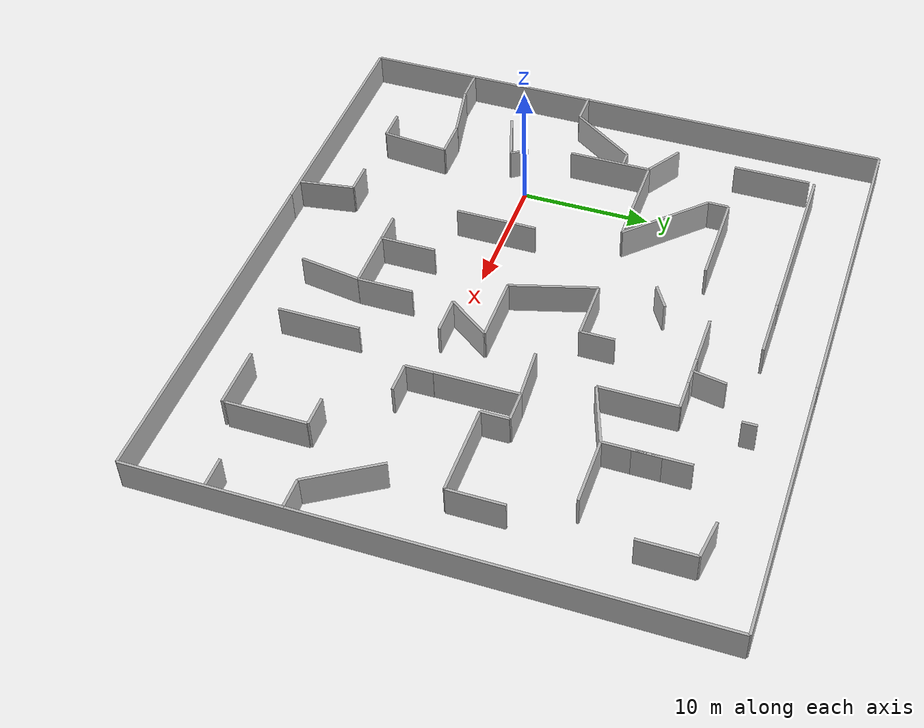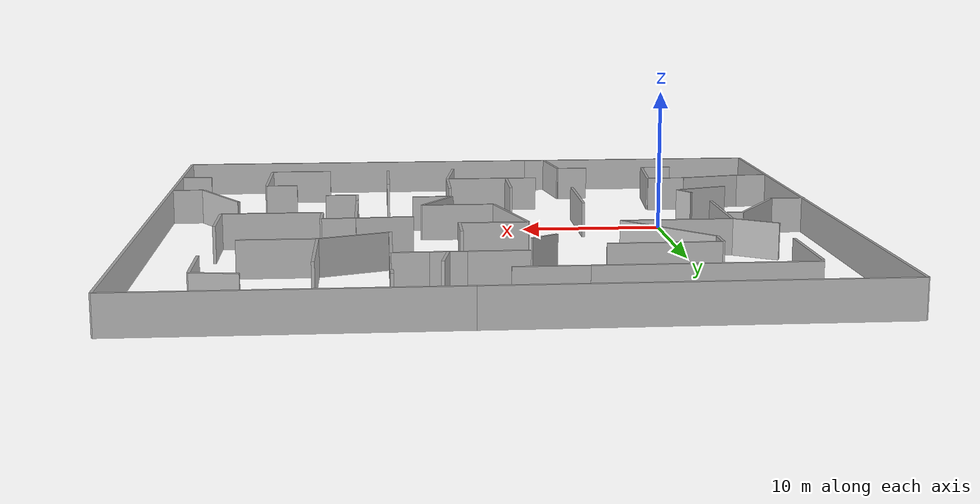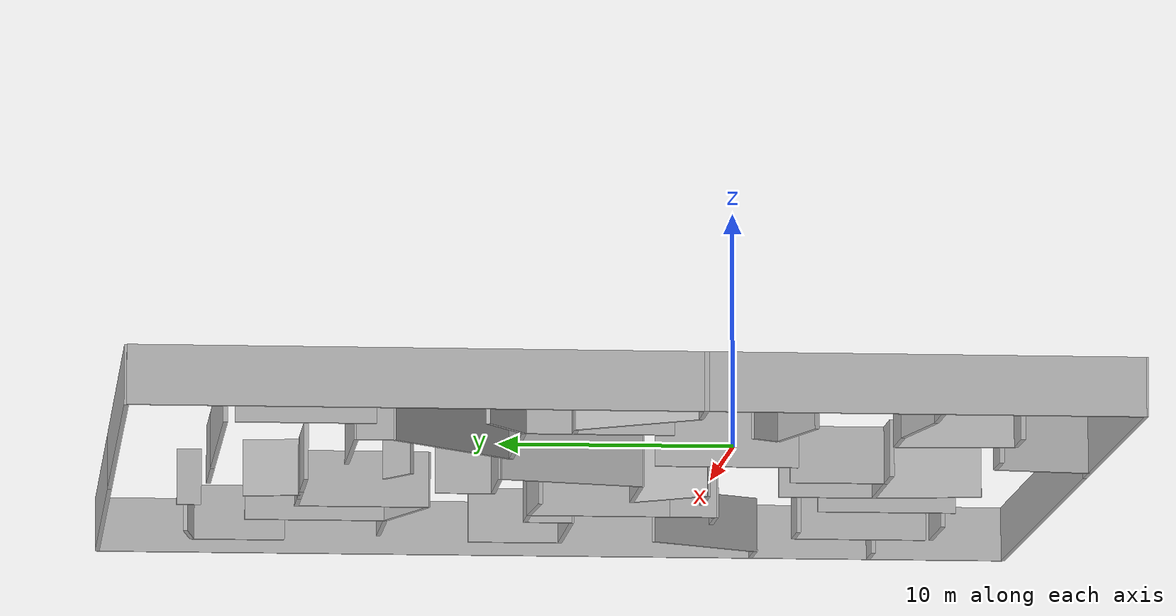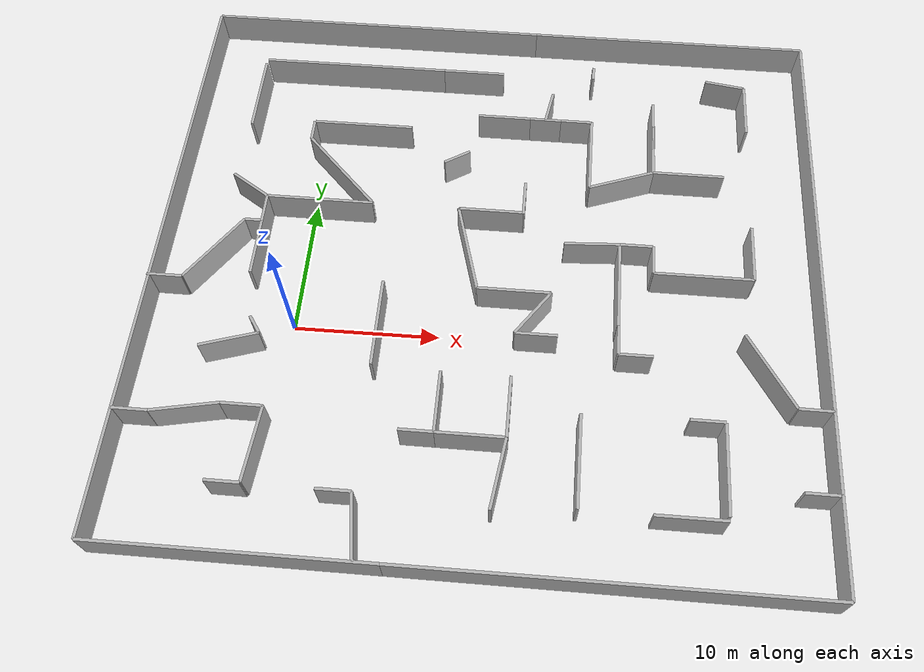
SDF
<?xml version="1.0" ?>
<sdf version="1.6">
  <model name="maze6_lines">
    <static>true</static>
    <link name="wall_0">
      <pose>-0.9276644999999997 -16.2205938 1.25 0 0 0.0</pose>
      <collision name="collision">
        <geometry>
          <box><size>18.3594066 0.2 2.5</size></box>
        </geometry>
      </collision>
      <visual name="visual">
        <geometry>
          <box><size>18.3594066 0.2 2.5</size></box>
        </geometry>
        <material>
          <ambient>0.7 0.7 0.7 1</ambient>
          <diffuse>0.7 0.7 0.7 1</diffuse>
        </material>
      </visual>
    </link>
    <link name="wall_1">
      <pose>22.0215963 -16.2205938 1.25 0 0 0.0</pose>
      <collision name="collision">
        <geometry>
          <box><size>27.539114999999995 0.2 2.5</size></box>
        </geometry>
      </collision>
      <visual name="visual">
        <geometry>
          <box><size>27.539114999999995 0.2 2.5</size></box>
        </geometry>
        <material>
          <ambient>0.7 0.7 0.7 1</ambient>
          <diffuse>0.7 0.7 0.7 1</diffuse>
        </material>
      </visual>
    </link>
    <link name="wall_2">
      <pose>-2.0751270299999995 -11.9926638 1.25 0 0 0.0</pose>
      <collision name="collision">
        <geometry>
          <box><size>2.2949251799999995 0.2 2.5</size></box>
        </geometry>
      </collision>
      <visual name="visual">
        <geometry>
          <box><size>2.2949251799999995 0.2 2.5</size></box>
        </geometry>
        <material>
          <ambient>0.7 0.7 0.7 1</ambient>
          <diffuse>0.7 0.7 0.7 1</diffuse>
        </material>
      </visual>
    </link>
    <link name="wall_3">
      <pose>4.80965058 -11.9926638 1.25 0 0 0.0</pose>
      <collision name="collision">
        <geometry>
          <box><size>2.2949268 0.2 2.5</size></box>
        </geometry>
      </collision>
      <visual name="visual">
        <geometry>
          <box><size>2.2949268 0.2 2.5</size></box>
        </geometry>
        <material>
          <ambient>0.7 0.7 0.7 1</ambient>
          <diffuse>0.7 0.7 0.7 1</diffuse>
        </material>
      </visual>
    </link>
    <link name="wall_4">
      <pose>26.6114484 -11.9926638 1.25 0 0 0.0</pose>
      <collision name="collision">
        <geometry>
          <box><size>4.589853600000001 0.2 2.5</size></box>
        </geometry>
      </collision>
      <visual name="visual">
        <geometry>
          <box><size>4.589853600000001 0.2 2.5</size></box>
        </geometry>
        <material>
          <ambient>0.7 0.7 0.7 1</ambient>
          <diffuse>0.7 0.7 0.7 1</diffuse>
        </material>
      </visual>
    </link>
    <link name="wall_5">
      <pose>34.6436886 -9.8786982 1.25 0 0 0.0</pose>
      <collision name="collision">
        <geometry>
          <box><size>2.2949303999999984 0.2 2.5</size></box>
        </geometry>
      </collision>
      <visual name="visual">
        <geometry>
          <box><size>2.2949303999999984 0.2 2.5</size></box>
        </geometry>
        <material>
          <ambient>0.7 0.7 0.7 1</ambient>
          <diffuse>0.7 0.7 0.7 1</diffuse>
        </material>
      </visual>
    </link>
    <link name="wall_6">
      <pose>-8.9153424 -7.764733199999999 1.25 0 0 0.0</pose>
      <collision name="collision">
        <geometry>
          <box><size>2.3840508000000016 0.2 2.5</size></box>
        </geometry>
      </collision>
      <visual name="visual">
        <geometry>
          <box><size>2.3840508000000016 0.2 2.5</size></box>
        </geometry>
        <material>
          <ambient>0.7 0.7 0.7 1</ambient>
          <diffuse>0.7 0.7 0.7 1</diffuse>
        </material>
      </visual>
    </link>
    <link name="wall_7">
      <pose>-1.878795504 -6.884519399999999 1.25 0 0 0.0</pose>
      <collision name="collision">
        <geometry>
          <box><size>2.7952387919999997 0.2 2.5</size></box>
        </geometry>
      </collision>
      <visual name="visual">
        <geometry>
          <box><size>2.7952387919999997 0.2 2.5</size></box>
        </geometry>
        <material>
          <ambient>0.7 0.7 0.7 1</ambient>
          <diffuse>0.7 0.7 0.7 1</diffuse>
        </material>
      </visual>
    </link>
    <link name="wall_8">
      <pose>-9.0304194 2.1085097999999998 1.25 0 0 0.0</pose>
      <collision name="collision">
        <geometry>
          <box><size>2.461601999999999 0.2 2.5</size></box>
        </geometry>
      </collision>
      <visual name="visual">
        <geometry>
          <box><size>2.461601999999999 0.2 2.5</size></box>
        </geometry>
        <material>
          <ambient>0.7 0.7 0.7 1</ambient>
          <diffuse>0.7 0.7 0.7 1</diffuse>
        </material>
      </visual>
    </link>
    <link name="wall_9">
      <pose>9.3995028 -7.764733199999999 1.25 0 0 0.0</pose>
      <collision name="collision">
        <geometry>
          <box><size>2.2949279999999987 0.2 2.5</size></box>
        </geometry>
      </collision>
      <visual name="visual">
        <geometry>
          <box><size>2.2949279999999987 0.2 2.5</size></box>
        </geometry>
        <material>
          <ambient>0.7 0.7 0.7 1</ambient>
          <diffuse>0.7 0.7 0.7 1</diffuse>
        </material>
      </visual>
    </link>
    <link name="wall_10">
      <pose>12.841892099999999 -7.764733199999999 1.25 0 0 0.0</pose>
      <collision name="collision">
        <geometry>
          <box><size>4.5898506 0.2 2.5</size></box>
        </geometry>
      </collision>
      <visual name="visual">
        <geometry>
          <box><size>4.5898506 0.2 2.5</size></box>
        </geometry>
        <material>
          <ambient>0.7 0.7 0.7 1</ambient>
          <diffuse>0.7 0.7 0.7 1</diffuse>
        </material>
      </visual>
    </link>
    <link name="wall_11">
      <pose>27.758910899999997 -5.65076706 1.25 0 0 0.0</pose>
      <collision name="collision">
        <geometry>
          <box><size>2.2949250000000028 0.2 2.5</size></box>
        </geometry>
      </collision>
      <visual name="visual">
        <geometry>
          <box><size>2.2949250000000028 0.2 2.5</size></box>
        </geometry>
        <material>
          <ambient>0.7 0.7 0.7 1</ambient>
          <diffuse>0.7 0.7 0.7 1</diffuse>
        </material>
      </visual>
    </link>
    <link name="wall_12">
      <pose>16.5713154 -0.398196858 1.25 0 0 0.0</pose>
      <collision name="collision">
        <geometry>
          <box><size>2.8689959999999974 0.2 2.5</size></box>
        </geometry>
      </collision>
      <visual name="visual">
        <geometry>
          <box><size>2.8689959999999974 0.2 2.5</size></box>
        </geometry>
        <material>
          <ambient>0.7 0.7 0.7 1</ambient>
          <diffuse>0.7 0.7 0.7 1</diffuse>
        </material>
      </visual>
    </link>
    <link name="wall_13">
      <pose>23.1690582 -1.4228358 1.25 0 0 0.0</pose>
      <collision name="collision">
        <geometry>
          <box><size>2.294926799999999 0.2 2.5</size></box>
        </geometry>
      </collision>
      <visual name="visual">
        <geometry>
          <box><size>2.294926799999999 0.2 2.5</size></box>
        </geometry>
        <material>
          <ambient>0.7 0.7 0.7 1</ambient>
          <diffuse>0.7 0.7 0.7 1</diffuse>
        </material>
      </visual>
    </link>
    <link name="wall_14">
      <pose>34.6436886 -4.360534499999999 1.25 0 0 0.0</pose>
      <collision name="collision">
        <geometry>
          <box><size>2.2949303999999984 0.2 2.5</size></box>
        </geometry>
      </collision>
      <visual name="visual">
        <geometry>
          <box><size>2.2949303999999984 0.2 2.5</size></box>
        </geometry>
        <material>
          <ambient>0.7 0.7 0.7 1</ambient>
          <diffuse>0.7 0.7 0.7 1</diffuse>
        </material>
      </visual>
    </link>
    <link name="wall_15">
      <pose>14.894624699999998 2.8050943200000003 1.25 0 0 0.0</pose>
      <collision name="collision">
        <geometry>
          <box><size>5.074236599999997 0.2 2.5</size></box>
        </geometry>
      </collision>
      <visual name="visual">
        <geometry>
          <box><size>5.074236599999997 0.2 2.5</size></box>
        </geometry>
        <material>
          <ambient>0.7 0.7 0.7 1</ambient>
          <diffuse>0.7 0.7 0.7 1</diffuse>
        </material>
      </visual>
    </link>
    <link name="wall_16">
      <pose>27.758910899999997 4.91905974 1.25 0 0 0.0</pose>
      <collision name="collision">
        <geometry>
          <box><size>6.884778600000001 0.2 2.5</size></box>
        </geometry>
      </collision>
      <visual name="visual">
        <geometry>
          <box><size>6.884778600000001 0.2 2.5</size></box>
        </geometry>
        <material>
          <ambient>0.7 0.7 0.7 1</ambient>
          <diffuse>0.7 0.7 0.7 1</diffuse>
        </material>
      </visual>
    </link>
    <link name="wall_17">
      <pose>-3.79821774 7.0330254 1.25 0 0 0.0</pose>
      <collision name="collision">
        <geometry>
          <box><size>1.26998364 0.2 2.5</size></box>
        </geometry>
      </collision>
      <visual name="visual">
        <geometry>
          <box><size>1.26998364 0.2 2.5</size></box>
        </geometry>
        <material>
          <ambient>0.7 0.7 0.7 1</ambient>
          <diffuse>0.7 0.7 0.7 1</diffuse>
        </material>
      </visual>
    </link>
    <link name="wall_18">
      <pose>23.144008499999998 7.0330254 1.25 0 0 0.0</pose>
      <collision name="collision">
        <geometry>
          <box><size>2.294924999999999 0.2 2.5</size></box>
        </geometry>
      </collision>
      <visual name="visual">
        <geometry>
          <box><size>2.294924999999999 0.2 2.5</size></box>
        </geometry>
        <material>
          <ambient>0.7 0.7 0.7 1</ambient>
          <diffuse>0.7 0.7 0.7 1</diffuse>
        </material>
      </visual>
    </link>
    <link name="wall_19">
      <pose>0.5545101900000002 9.1469904 1.25 0 0 0.0</pose>
      <collision name="collision">
        <geometry>
          <box><size>7.608610860000001 0.2 2.5</size></box>
        </geometry>
      </collision>
      <visual name="visual">
        <geometry>
          <box><size>7.608610860000001 0.2 2.5</size></box>
        </geometry>
        <material>
          <ambient>0.7 0.7 0.7 1</ambient>
          <diffuse>0.7 0.7 0.7 1</diffuse>
        </material>
      </visual>
    </link>
    <link name="wall_20">
      <pose>12.841892099999999 9.1469904 1.25 0 0 0.0</pose>
      <collision name="collision">
        <geometry>
          <box><size>4.5898506 0.2 2.5</size></box>
        </geometry>
      </collision>
      <visual name="visual">
        <geometry>
          <box><size>4.5898506 0.2 2.5</size></box>
        </geometry>
        <material>
          <ambient>0.7 0.7 0.7 1</ambient>
          <diffuse>0.7 0.7 0.7 1</diffuse>
        </material>
      </visual>
    </link>
    <link name="wall_21">
      <pose>26.8426473 13.374922199999999 1.25 0 0 0.0</pose>
      <collision name="collision">
        <geometry>
          <box><size>5.124882599999999 0.2 2.5</size></box>
        </geometry>
      </collision>
      <visual name="visual">
        <geometry>
          <box><size>5.124882599999999 0.2 2.5</size></box>
        </geometry>
        <material>
          <ambient>0.7 0.7 0.7 1</ambient>
          <diffuse>0.7 0.7 0.7 1</diffuse>
        </material>
      </visual>
    </link>
    <link name="wall_22">
      <pose>13.2070638 17.6028534 1.25 0 0 0.0</pose>
      <collision name="collision">
        <geometry>
          <box><size>3.8595071999999995 0.2 2.5</size></box>
        </geometry>
      </collision>
      <visual name="visual">
        <geometry>
          <box><size>3.8595071999999995 0.2 2.5</size></box>
        </geometry>
        <material>
          <ambient>0.7 0.7 0.7 1</ambient>
          <diffuse>0.7 0.7 0.7 1</diffuse>
        </material>
      </visual>
    </link>
    <link name="wall_23">
      <pose>18.5792055 17.6028534 1.25 0 0 0.0</pose>
      <collision name="collision">
        <geometry>
          <box><size>2.2949250000000028 0.2 2.5</size></box>
        </geometry>
      </collision>
      <visual name="visual">
        <geometry>
          <box><size>2.2949250000000028 0.2 2.5</size></box>
        </geometry>
        <material>
          <ambient>0.7 0.7 0.7 1</ambient>
          <diffuse>0.7 0.7 0.7 1</diffuse>
        </material>
      </visual>
    </link>
    <link name="wall_24">
      <pose>2.7647120099999998 16.084273800000002 1.25 0 0 0.0</pose>
      <collision name="collision">
        <geometry>
          <box><size>7.25997318 0.2 2.5</size></box>
        </geometry>
      </collision>
      <visual name="visual">
        <geometry>
          <box><size>7.25997318 0.2 2.5</size></box>
        </geometry>
        <material>
          <ambient>0.7 0.7 0.7 1</ambient>
          <diffuse>0.7 0.7 0.7 1</diffuse>
        </material>
      </visual>
    </link>
    <link name="wall_25">
      <pose>10.5469647 21.797592599999998 1.25 0 0 0.0</pose>
      <collision name="collision">
        <geometry>
          <box><size>4.589851799999998 0.2 2.5</size></box>
        </geometry>
      </collision>
      <visual name="visual">
        <geometry>
          <box><size>4.589851799999998 0.2 2.5</size></box>
        </geometry>
        <material>
          <ambient>0.7 0.7 0.7 1</ambient>
          <diffuse>0.7 0.7 0.7 1</diffuse>
        </material>
      </visual>
    </link>
    <link name="wall_26">
      <pose>16.284280199999998 17.5982484 1.25 0 0 0.0</pose>
      <collision name="collision">
        <geometry>
          <box><size>2.2949255999999973 0.2 2.5</size></box>
        </geometry>
      </collision>
      <visual name="visual">
        <geometry>
          <box><size>2.2949255999999973 0.2 2.5</size></box>
        </geometry>
        <material>
          <ambient>0.7 0.7 0.7 1</ambient>
          <diffuse>0.7 0.7 0.7 1</diffuse>
        </material>
      </visual>
    </link>
    <link name="wall_27">
      <pose>1.3672615500000007 21.799174799999996 1.25 0 0 0.0</pose>
      <collision name="collision">
        <geometry>
          <box><size>13.769554500000002 0.2 2.5</size></box>
        </geometry>
      </collision>
      <visual name="visual">
        <geometry>
          <box><size>13.769554500000002 0.2 2.5</size></box>
        </geometry>
        <material>
          <ambient>0.7 0.7 0.7 1</ambient>
          <diffuse>0.7 0.7 0.7 1</diffuse>
        </material>
      </visual>
    </link>
    <link name="wall_28">
      <pose>2.5147247999999998 26.0587134 1.25 0 0 0.0</pose>
      <collision name="collision">
        <geometry>
          <box><size>25.2441852 0.2 2.5</size></box>
        </geometry>
      </collision>
      <visual name="visual">
        <geometry>
          <box><size>25.2441852 0.2 2.5</size></box>
        </geometry>
        <material>
          <ambient>0.7 0.7 0.7 1</ambient>
          <diffuse>0.7 0.7 0.7 1</diffuse>
        </material>
      </visual>
    </link>
    <link name="wall_29">
      <pose>25.463985599999997 26.0587134 1.25 0 0 0.0</pose>
      <collision name="collision">
        <geometry>
          <box><size>20.6543364 0.2 2.5</size></box>
        </geometry>
      </collision>
      <visual name="visual">
        <geometry>
          <box><size>20.6543364 0.2 2.5</size></box>
        </geometry>
        <material>
          <ambient>0.7 0.7 0.7 1</ambient>
          <diffuse>0.7 0.7 0.7 1</diffuse>
        </material>
      </visual>
    </link>
    <link name="wall_30">
      <pose>-10.1073678 4.919059799999999 1.25 0 0 1.5707963267948966</pose>
      <collision name="collision">
        <geometry>
          <box><size>42.2793072 0.2 2.5</size></box>
        </geometry>
      </collision>
      <visual name="visual">
        <geometry>
          <box><size>42.2793072 0.2 2.5</size></box>
        </geometry>
        <material>
          <ambient>0.7 0.7 0.7 1</ambient>
          <diffuse>0.7 0.7 0.7 1</diffuse>
        </material>
      </visual>
    </link>
    <link name="wall_31">
      <pose>-5.5793619 18.4485351 1.25 0 0 1.5707963267948966</pose>
      <collision name="collision">
        <geometry>
          <box><size>5.919294600000002 0.2 2.5</size></box>
        </geometry>
      </collision>
      <visual name="visual">
        <geometry>
          <box><size>5.919294600000002 0.2 2.5</size></box>
        </geometry>
        <material>
          <ambient>0.7 0.7 0.7 1</ambient>
          <diffuse>0.7 0.7 0.7 1</diffuse>
        </material>
      </visual>
    </link>
    <link name="wall_32">
      <pose>-3.2225896199999995 5.97604236 1.25 0 0 1.5707963267948966</pose>
      <collision name="collision">
        <geometry>
          <box><size>6.34189608 0.2 2.5</size></box>
        </geometry>
      </collision>
      <visual name="visual">
        <geometry>
          <box><size>6.34189608 0.2 2.5</size></box>
        </geometry>
        <material>
          <ambient>0.7 0.7 0.7 1</ambient>
          <diffuse>0.7 0.7 0.7 1</diffuse>
        </material>
      </visual>
    </link>
    <link name="wall_33">
      <pose>-0.91644624 15.2892045 1.25 0 0 1.5707963267948966</pose>
      <collision name="collision">
        <geometry>
          <box><size>1.590138600000003 0.2 2.5</size></box>
        </geometry>
      </collision>
      <visual name="visual">
        <geometry>
          <box><size>1.590138600000003 0.2 2.5</size></box>
        </geometry>
        <material>
          <ambient>0.7 0.7 0.7 1</ambient>
          <diffuse>0.7 0.7 0.7 1</diffuse>
        </material>
      </visual>
    </link>
    <link name="wall_34">
      <pose>5.95711398 -0.31160783999999975 1.25 0 0 1.5707963267948966</pose>
      <collision name="collision">
        <geometry>
          <box><size>6.23340432 0.2 2.5</size></box>
        </geometry>
      </collision>
      <visual name="visual">
        <geometry>
          <box><size>6.23340432 0.2 2.5</size></box>
        </geometry>
        <material>
          <ambient>0.7 0.7 0.7 1</ambient>
          <diffuse>0.7 0.7 0.7 1</diffuse>
        </material>
      </visual>
    </link>
    <link name="wall_35">
      <pose>10.5469668 -5.6507673 1.25 0 0 1.5707963267948966</pose>
      <collision name="collision">
        <geometry>
          <box><size>4.2279317999999995 0.2 2.5</size></box>
        </geometry>
      </collision>
      <visual name="visual">
        <geometry>
          <box><size>4.2279317999999995 0.2 2.5</size></box>
        </geometry>
        <material>
          <ambient>0.7 0.7 0.7 1</ambient>
          <diffuse>0.7 0.7 0.7 1</diffuse>
        </material>
      </visual>
    </link>
    <link name="wall_36">
      <pose>15.1368174 -5.6507673 1.25 0 0 1.5707963267948966</pose>
      <collision name="collision">
        <geometry>
          <box><size>4.2279317999999995 0.2 2.5</size></box>
        </geometry>
      </collision>
      <visual name="visual">
        <geometry>
          <box><size>4.2279317999999995 0.2 2.5</size></box>
        </geometry>
        <material>
          <ambient>0.7 0.7 0.7 1</ambient>
          <diffuse>0.7 0.7 0.7 1</diffuse>
        </material>
      </visual>
    </link>
    <link name="wall_37">
      <pose>15.1368174 10.3853517 1.25 0 0 1.5707963267948966</pose>
      <collision name="collision">
        <geometry>
          <box><size>2.6521866000000003 0.2 2.5</size></box>
        </geometry>
      </collision>
      <visual name="visual">
        <geometry>
          <box><size>2.6521866000000003 0.2 2.5</size></box>
        </geometry>
        <material>
          <ambient>0.7 0.7 0.7 1</ambient>
          <diffuse>0.7 0.7 0.7 1</diffuse>
        </material>
      </visual>
    </link>
    <link name="wall_38">
      <pose>19.726668 -8.883205440000001 1.25 0 0 1.5707963267948966</pose>
      <collision name="collision">
        <geometry>
          <box><size>6.218916720000001 0.2 2.5</size></box>
        </geometry>
      </collision>
      <visual name="visual">
        <geometry>
          <box><size>6.218916720000001 0.2 2.5</size></box>
        </geometry>
        <material>
          <ambient>0.7 0.7 0.7 1</ambient>
          <diffuse>0.7 0.7 0.7 1</diffuse>
        </material>
      </visual>
    </link>
    <link name="wall_39">
      <pose>21.996546 3.8620775999999997 1.25 0 0 1.5707963267948966</pose>
      <collision name="collision">
        <geometry>
          <box><size>6.3418956 0.2 2.5</size></box>
        </geometry>
      </collision>
      <visual name="visual">
        <geometry>
          <box><size>6.3418956 0.2 2.5</size></box>
        </geometry>
        <material>
          <ambient>0.7 0.7 0.7 1</ambient>
          <diffuse>0.7 0.7 0.7 1</diffuse>
        </material>
      </visual>
    </link>
    <link name="wall_40">
      <pose>19.726668 14.679535199999998 1.25 0 0 1.5707963267948966</pose>
      <collision name="collision">
        <geometry>
          <box><size>5.9289132 0.2 2.5</size></box>
        </geometry>
      </collision>
      <visual name="visual">
        <geometry>
          <box><size>5.9289132 0.2 2.5</size></box>
        </geometry>
        <material>
          <ambient>0.7 0.7 0.7 1</ambient>
          <diffuse>0.7 0.7 0.7 1</diffuse>
        </material>
      </visual>
    </link>
    <link name="wall_41">
      <pose>19.726668 22.4002689 1.25 0 0 1.5707963267948966</pose>
      <collision name="collision">
        <geometry>
          <box><size>1.0944306000000026 0.2 2.5</size></box>
        </geometry>
      </collision>
      <visual name="visual">
        <geometry>
          <box><size>1.0944306000000026 0.2 2.5</size></box>
        </geometry>
        <material>
          <ambient>0.7 0.7 0.7 1</ambient>
          <diffuse>0.7 0.7 0.7 1</diffuse>
        </material>
      </visual>
    </link>
    <link name="wall_42">
      <pose>22.0215948 -0.3658530000000001 1.25 0 0 1.5707963267948966</pose>
      <collision name="collision">
        <geometry>
          <box><size>2.1139656000000002 0.2 2.5</size></box>
        </geometry>
      </collision>
      <visual name="visual">
        <geometry>
          <box><size>2.1139656000000002 0.2 2.5</size></box>
        </geometry>
        <material>
          <ambient>0.7 0.7 0.7 1</ambient>
          <diffuse>0.7 0.7 0.7 1</diffuse>
        </material>
      </visual>
    </link>
    <link name="wall_43">
      <pose>24.3107682 16.5458706 1.25 0 0 1.5707963267948966</pose>
      <collision name="collision">
        <geometry>
          <box><size>6.341896800000002 0.2 2.5</size></box>
        </geometry>
      </collision>
      <visual name="visual">
        <geometry>
          <box><size>6.341896800000002 0.2 2.5</size></box>
        </geometry>
        <material>
          <ambient>0.7 0.7 0.7 1</ambient>
          <diffuse>0.7 0.7 0.7 1</diffuse>
        </material>
      </visual>
    </link>
    <link name="wall_44">
      <pose>24.316521599999998 5.97604257 1.25 0 0 1.5707963267948966</pose>
      <collision name="collision">
        <geometry>
          <box><size>2.11396566 0.2 2.5</size></box>
        </geometry>
      </collision>
      <visual name="visual">
        <geometry>
          <box><size>2.11396566 0.2 2.5</size></box>
        </geometry>
        <material>
          <ambient>0.7 0.7 0.7 1</ambient>
          <diffuse>0.7 0.7 0.7 1</diffuse>
        </material>
      </visual>
    </link>
    <link name="wall_45">
      <pose>24.316521599999998 16.5458706 1.25 0 0 1.5707963267948966</pose>
      <collision name="collision">
        <geometry>
          <box><size>2.113965600000002 0.2 2.5</size></box>
        </geometry>
      </collision>
      <visual name="visual">
        <geometry>
          <box><size>2.113965600000002 0.2 2.5</size></box>
        </geometry>
        <material>
          <ambient>0.7 0.7 0.7 1</ambient>
          <diffuse>0.7 0.7 0.7 1</diffuse>
        </material>
      </visual>
    </link>
    <link name="wall_46">
      <pose>28.9063734 -8.72597478 1.25 0 0 1.5707963267948966</pose>
      <collision name="collision">
        <geometry>
          <box><size>6.032877239999999 0.2 2.5</size></box>
        </geometry>
      </collision>
      <visual name="visual">
        <geometry>
          <box><size>6.032877239999999 0.2 2.5</size></box>
        </geometry>
        <material>
          <ambient>0.7 0.7 0.7 1</ambient>
          <diffuse>0.7 0.7 0.7 1</diffuse>
        </material>
      </visual>
    </link>
    <link name="wall_47">
      <pose>31.2013002 7.03302507 1.25 0 0 1.5707963267948966</pose>
      <collision name="collision">
        <geometry>
          <box><size>4.22793066 0.2 2.5</size></box>
        </geometry>
      </collision>
      <visual name="visual">
        <geometry>
          <box><size>4.22793066 0.2 2.5</size></box>
        </geometry>
        <material>
          <ambient>0.7 0.7 0.7 1</ambient>
          <diffuse>0.7 0.7 0.7 1</diffuse>
        </material>
      </visual>
    </link>
    <link name="wall_48">
      <pose>31.2013002 19.716819 1.25 0 0 1.5707963267948966</pose>
      <collision name="collision">
        <geometry>
          <box><size>4.227931199999997 0.2 2.5</size></box>
        </geometry>
      </collision>
      <visual name="visual">
        <geometry>
          <box><size>4.227931199999997 0.2 2.5</size></box>
        </geometry>
        <material>
          <ambient>0.7 0.7 0.7 1</ambient>
          <diffuse>0.7 0.7 0.7 1</diffuse>
        </material>
      </visual>
    </link>
    <link name="wall_49">
      <pose>35.7911538 4.919059799999999 1.25 0 0 1.5707963267948966</pose>
      <collision name="collision">
        <geometry>
          <box><size>42.2793072 0.2 2.5</size></box>
        </geometry>
      </collision>
      <visual name="visual">
        <geometry>
          <box><size>42.2793072 0.2 2.5</size></box>
        </geometry>
        <material>
          <ambient>0.7 0.7 0.7 1</ambient>
          <diffuse>0.7 0.7 0.7 1</diffuse>
        </material>
      </visual>
    </link>
    <link name="wall_50">
      <pose>-0.7044201 -9.438592199999999 1.25 0 0 1.4836107870428528</pose>
      <collision name="collision">
        <geometry>
          <box><size>5.127620395855234 0.2 2.5</size></box>
        </geometry>
      </collision>
      <visual name="visual">
        <geometry>
          <box><size>5.127620395855234 0.2 2.5</size></box>
        </geometry>
        <material>
          <ambient>0.7 0.7 0.7 1</ambient>
          <diffuse>0.7 0.7 0.7 1</diffuse>
        </material>
      </visual>
    </link>
    <link name="wall_51">
      <pose>14.7925635 -10.123398 1.25 0 0 1.4258667819012962</pose>
      <collision name="collision">
        <geometry>
          <box><size>4.767309675875588 0.2 2.5</size></box>
        </geometry>
      </collision>
      <visual name="visual">
        <geometry>
          <box><size>4.767309675875588 0.2 2.5</size></box>
        </geometry>
        <material>
          <ambient>0.7 0.7 0.7 1</ambient>
          <diffuse>0.7 0.7 0.7 1</diffuse>
        </material>
      </visual>
    </link>
    <link name="wall_52">
      <pose>31.941837 -1.8558938999999999 1.25 0 0 2.1262269691547444</pose>
      <collision name="collision">
        <geometry>
          <box><size>5.895537720410056 0.2 2.5</size></box>
        </geometry>
      </collision>
      <visual name="visual">
        <geometry>
          <box><size>5.895537720410056 0.2 2.5</size></box>
        </geometry>
        <material>
          <ambient>0.7 0.7 0.7 1</ambient>
          <diffuse>0.7 0.7 0.7 1</diffuse>
        </material>
      </visual>
    </link>
    <link name="wall_53">
      <pose>29.7512661 22.042824599999996 1.25 0 0 2.9963898796422197</pose>
      <collision name="collision">
        <geometry>
          <box><size>2.9309101805546276 0.2 2.5</size></box>
        </geometry>
      </collision>
      <visual name="visual">
        <geometry>
          <box><size>2.9309101805546276 0.2 2.5</size></box>
        </geometry>
        <material>
          <ambient>0.7 0.7 0.7 1</ambient>
          <diffuse>0.7 0.7 0.7 1</diffuse>
        </material>
      </visual>
    </link>
    <link name="wall_54">
      <pose>-6.1164138 4.570767 1.25 0 0 -2.170432003218642</pose>
      <collision name="collision">
        <geometry>
          <box><size>5.965196123891317 0.2 2.5</size></box>
        </geometry>
      </collision>
      <visual name="visual">
        <geometry>
          <box><size>5.965196123891317 0.2 2.5</size></box>
        </geometry>
        <material>
          <ambient>0.7 0.7 0.7 1</ambient>
          <diffuse>0.7 0.7 0.7 1</diffuse>
        </material>
      </visual>
    </link>
    <link name="wall_55">
      <pose>-5.499865799999999 -7.3246266 1.25 0 0 -2.946180086811349</pose>
      <collision name="collision">
        <geometry>
          <box><size>4.533179483825893 0.2 2.5</size></box>
        </geometry>
      </collision>
      <visual name="visual">
        <geometry>
          <box><size>4.533179483825893 0.2 2.5</size></box>
        </geometry>
        <material>
          <ambient>0.7 0.7 0.7 1</ambient>
          <diffuse>0.7 0.7 0.7 1</diffuse>
        </material>
      </visual>
    </link>
    <link name="wall_56">
      <pose>16.284280199999998 1.2034482 1.25 0 0 -2.1924625820404633</pose>
      <collision name="collision">
        <geometry>
          <box><size>3.9405273072140976 0.2 2.5</size></box>
        </geometry>
      </collision>
      <visual name="visual">
        <geometry>
          <box><size>3.9405273072140976 0.2 2.5</size></box>
        </geometry>
        <material>
          <ambient>0.7 0.7 0.7 1</ambient>
          <diffuse>0.7 0.7 0.7 1</diffuse>
        </material>
      </visual>
    </link>
    <link name="wall_57">
      <pose>11.452236 5.976041699999999 1.25 0 0 -1.2927052554164518</pose>
      <collision name="collision">
        <geometry>
          <box><size>6.595278694243525 0.2 2.5</size></box>
        </geometry>
      </collision>
      <visual name="visual">
        <geometry>
          <box><size>6.595278694243525 0.2 2.5</size></box>
        </geometry>
        <material>
          <ambient>0.7 0.7 0.7 1</ambient>
          <diffuse>0.7 0.7 0.7 1</diffuse>
        </material>
      </visual>
    </link>
    <link name="wall_58">
      <pose>1.7211848999999997 11.820562199999998 1.25 0 0 -0.7921651706748063</pose>
      <collision name="collision">
        <geometry>
          <box><size>7.511347719997143 0.2 2.5</size></box>
        </geometry>
      </collision>
      <visual name="visual">
        <geometry>
          <box><size>7.511347719997143 0.2 2.5</size></box>
        </geometry>
        <material>
          <ambient>0.7 0.7 0.7 1</ambient>
          <diffuse>0.7 0.7 0.7 1</diffuse>
        </material>
      </visual>
    </link>
    <link name="wall_59">
      <pose>22.0187181 12.5449998 1.25 0 0 0.34740200563893603</pose>
      <collision name="collision">
        <geometry>
          <box><size>4.875351825263589 0.2 2.5</size></box>
        </geometry>
      </collision>
      <visual name="visual">
        <geometry>
          <box><size>4.875351825263589 0.2 2.5</size></box>
        </geometry>
        <material>
          <ambient>0.7 0.7 0.7 1</ambient>
          <diffuse>0.7 0.7 0.7 1</diffuse>
        </material>
      </visual>
    </link>
    <link name="wall_60">
      <pose>6.2762271 -14.088085199999998 1.25 0 0 -1.4196667490314905</pose>
      <collision name="collision">
        <geometry>
          <box><size>4.239161061960032 0.2 2.5</size></box>
        </geometry>
      </collision>
      <visual name="visual">
        <geometry>
          <box><size>4.239161061960032 0.2 2.5</size></box>
        </geometry>
        <material>
          <ambient>0.7 0.7 0.7 1</ambient>
          <diffuse>0.7 0.7 0.7 1</diffuse>
        </material>
      </visual>
    </link>
    <link name="wall_61">
      <pose>-2.1388614 -1.1634345 1.25 0 0 2.1871361734274823</pose>
      <collision name="collision">
        <geometry>
          <box><size>1.4305880644026776 0.2 2.5</size></box>
        </geometry>
      </collision>
      <visual name="visual">
        <geometry>
          <box><size>1.4305880644026776 0.2 2.5</size></box>
        </geometry>
        <material>
          <ambient>0.7 0.7 0.7 1</ambient>
          <diffuse>0.7 0.7 0.7 1</diffuse>
        </material>
      </visual>
    </link>
    <link name="wall_62">
      <pose>-3.65575314 -2.3581194 1.25 0 0 -2.8350476807908382</pose>
      <collision name="collision">
        <geometry>
          <box><size>4.049519298823256 0.2 2.5</size></box>
        </geometry>
      </collision>
      <visual name="visual">
        <geometry>
          <box><size>4.049519298823256 0.2 2.5</size></box>
        </geometry>
        <material>
          <ambient>0.7 0.7 0.7 1</ambient>
          <diffuse>0.7 0.7 0.7 1</diffuse>
        </material>
      </visual>
    </link>
    <link name="wall_63">
      <pose>9.9996678 13.648983299999998 1.25 0 0 0.5546149452519656</pose>
      <collision name="collision">
        <geometry>
          <box><size>2.060807483870893 0.2 2.5</size></box>
        </geometry>
      </collision>
      <visual name="visual">
        <geometry>
          <box><size>2.060807483870893 0.2 2.5</size></box>
        </geometry>
        <material>
          <ambient>0.7 0.7 0.7 1</ambient>
          <diffuse>0.7 0.7 0.7 1</diffuse>
        </material>
      </visual>
    </link>
    <link name="wall_64">
      <pose>16.504914300000003 18.8599125 1.25 0 0 1.397671575086354</pose>
      <collision name="collision">
        <geometry>
          <box><size>2.5616223151033815 0.2 2.5</size></box>
        </geometry>
      </collision>
      <visual name="visual">
        <geometry>
          <box><size>2.5616223151033815 0.2 2.5</size></box>
        </geometry>
        <material>
          <ambient>0.7 0.7 0.7 1</ambient>
          <diffuse>0.7 0.7 0.7 1</diffuse>
        </material>
      </visual>
    </link>
    <link name="wall_65">
      <pose>-4.607236049999999 10.0014528 1.25 0 0 2.5797882704530535</pose>
      <collision name="collision">
        <geometry>
          <box><size>3.2079608617276514 0.2 2.5</size></box>
        </geometry>
      </collision>
      <visual name="visual">
        <geometry>
          <box><size>3.2079608617276514 0.2 2.5</size></box>
        </geometry>
        <material>
          <ambient>0.7 0.7 0.7 1</ambient>
          <diffuse>0.7 0.7 0.7 1</diffuse>
        </material>
      </visual>
    </link>
    <link name="wall_66">
      <pose>20.060104199999998 6.9246441 1.25 0 0 -3.085681991214044</pose>
      <collision name="collision">
        <geometry>
          <box><size>3.8789448157558173 0.2 2.5</size></box>
        </geometry>
      </collision>
      <visual name="visual">
        <geometry>
          <box><size>3.8789448157558173 0.2 2.5</size></box>
        </geometry>
        <material>
          <ambient>0.7 0.7 0.7 1</ambient>
          <diffuse>0.7 0.7 0.7 1</diffuse>
        </material>
      </visual>
    </link>
  </model>
</sdf>
